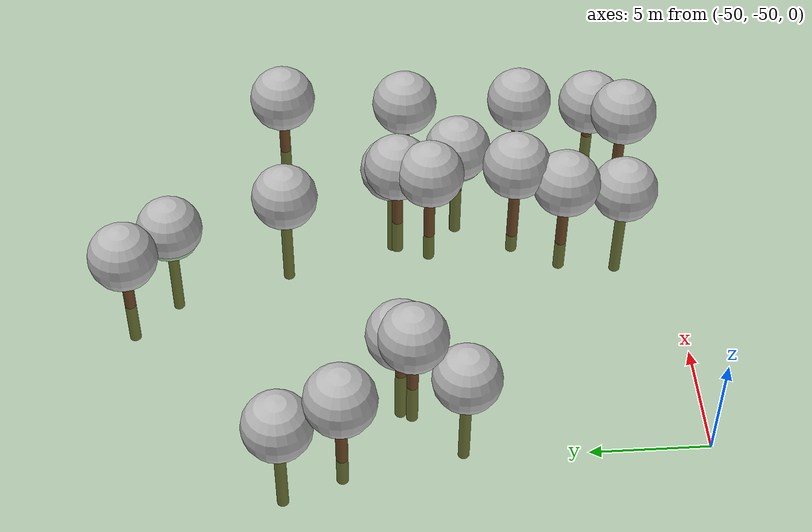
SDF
<sdf version="1.7">
 <world name="default">
  <model name="tree_simple481">
   <static>1</static>
   <link name="link">
    <pose>0 0 0.1 0 -0 0</pose>
    <collision name="collision_trunk">
     <pose>0 0 2 0 -0 0</pose>
     <geometry><cylinder><radius>0.25</radius><length>4</length></cylinder></geometry>
    </collision>
    <collision name="collision_treetop">
     <pose>0 0 5.2 0 -0 0</pose>
     <geometry><sphere><radius>1.5</radius></sphere></geometry>
    </collision>
    <visual name="trunk">
     <pose>0 0 2 0 -0 0</pose>
     <geometry><cylinder><radius>0.25</radius><length>4</length></cylinder></geometry>
     <material>
      <script>
       <uri>model://tree_simple/scripts</uri>
       <uri>model://tree_simple/materials/textures</uri>
       <name>TreeSimple/Trunk</name>
      </script>
     </material>
    </visual>
    <visual name="treetop">
     <pose>0 0 5.2 0 -0 0</pose>
     <geometry><sphere><radius>1.5</radius></sphere></geometry>
     <material>
      <script>
       <uri>model://tree_simple/scripts</uri>
       <uri>model://tree_simple/materials/textures</uri>
       <name>TreeSimple/Treetop</name>
      </script>
     </material>
    </visual>
   </link>
   <pose>-37.2553 -39.474 -1.59025 0 -0 0</pose>
  </model>
  <model name="tree_simple438">
   <static>1</static>
   <link name="link">
    <pose>0 0 0.1 0 -0 0</pose>
    <collision name="collision_trunk">
     <pose>0 0 2 0 -0 0</pose>
     <geometry><cylinder><radius>0.25</radius><length>4</length></cylinder></geometry>
    </collision>
    <collision name="collision_treetop">
     <pose>0 0 5.2 0 -0 0</pose>
     <geometry><sphere><radius>1.5</radius></sphere></geometry>
    </collision>
    <visual name="trunk">
     <pose>0 0 2 0 -0 0</pose>
     <geometry><cylinder><radius>0.25</radius><length>4</length></cylinder></geometry>
     <material>
      <script>
       <uri>model://tree_simple/scripts</uri>
       <uri>model://tree_simple/materials/textures</uri>
       <name>TreeSimple/Trunk</name>
      </script>
     </material>
    </visual>
    <visual name="treetop">
     <pose>0 0 5.2 0 -0 0</pose>
     <geometry><sphere><radius>1.5</radius></sphere></geometry>
     <material>
      <script>
       <uri>model://tree_simple/scripts</uri>
       <uri>model://tree_simple/materials/textures</uri>
       <name>TreeSimple/Treetop</name>
      </script>
     </material>
    </visual>
   </link>
   <pose>-34.2898 -38.004 -4.01416 0 -0 0</pose>
  </model>
  <model name="tree_simple416">
   <static>1</static>
   <link name="link">
    <pose>0 0 0.1 0 -0 0</pose>
    <collision name="collision_trunk">
     <pose>0 0 2 0 -0 0</pose>
     <geometry><cylinder><radius>0.25</radius><length>4</length></cylinder></geometry>
    </collision>
    <collision name="collision_treetop">
     <pose>0 0 5.2 0 -0 0</pose>
     <geometry><sphere><radius>1.5</radius></sphere></geometry>
    </collision>
    <visual name="trunk">
     <pose>0 0 2 0 -0 0</pose>
     <geometry><cylinder><radius>0.25</radius><length>4</length></cylinder></geometry>
     <material>
      <script>
       <uri>model://tree_simple/scripts</uri>
       <uri>model://tree_simple/materials/textures</uri>
       <name>TreeSimple/Trunk</name>
      </script>
     </material>
    </visual>
    <visual name="treetop">
     <pose>0 0 5.2 0 -0 0</pose>
     <geometry><sphere><radius>1.5</radius></sphere></geometry>
     <material>
      <script>
       <uri>model://tree_simple/scripts</uri>
       <uri>model://tree_simple/materials/textures</uri>
       <name>TreeSimple/Treetop</name>
      </script>
     </material>
    </visual>
   </link>
   <pose>-31.2796 -38.7286 -2.65983 0 -0 0</pose>
  </model>
  <model name="tree_simple411">
   <static>1</static>
   <link name="link">
    <pose>0 0 0.1 0 -0 0</pose>
    <collision name="collision_trunk">
     <pose>0 0 2 0 -0 0</pose>
     <geometry><cylinder><radius>0.25</radius><length>4</length></cylinder></geometry>
    </collision>
    <collision name="collision_treetop">
     <pose>0 0 5.2 0 -0 0</pose>
     <geometry><sphere><radius>1.5</radius></sphere></geometry>
    </collision>
    <visual name="trunk">
     <pose>0 0 2 0 -0 0</pose>
     <geometry><cylinder><radius>0.25</radius><length>4</length></cylinder></geometry>
     <material>
      <script>
       <uri>model://tree_simple/scripts</uri>
       <uri>model://tree_simple/materials/textures</uri>
       <name>TreeSimple/Trunk</name>
      </script>
     </material>
    </visual>
    <visual name="treetop">
     <pose>0 0 5.2 0 -0 0</pose>
     <geometry><sphere><radius>1.5</radius></sphere></geometry>
     <material>
      <script>
       <uri>model://tree_simple/scripts</uri>
       <uri>model://tree_simple/materials/textures</uri>
       <name>TreeSimple/Treetop</name>
      </script>
     </material>
    </visual>
   </link>
   <pose>-32.1703 -41.1753 -5.04857 0 -0 0</pose>
  </model>
  <model name="tree_simple407">
   <static>1</static>
   <link name="link">
    <pose>0 0 0.1 0 -0 0</pose>
    <collision name="collision_trunk">
     <pose>0 0 2 0 -0 0</pose>
     <geometry><cylinder><radius>0.25</radius><length>4</length></cylinder></geometry>
    </collision>
    <collision name="collision_treetop">
     <pose>0 0 5.2 0 -0 0</pose>
     <geometry><sphere><radius>1.5</radius></sphere></geometry>
    </collision>
    <visual name="trunk">
     <pose>0 0 2 0 -0 0</pose>
     <geometry><cylinder><radius>0.25</radius><length>4</length></cylinder></geometry>
     <material>
      <script>
       <uri>model://tree_simple/scripts</uri>
       <uri>model://tree_simple/materials/textures</uri>
       <name>TreeSimple/Trunk</name>
      </script>
     </material>
    </visual>
    <visual name="treetop">
     <pose>0 0 5.2 0 -0 0</pose>
     <geometry><sphere><radius>1.5</radius></sphere></geometry>
     <material>
      <script>
       <uri>model://tree_simple/scripts</uri>
       <uri>model://tree_simple/materials/textures</uri>
       <name>TreeSimple/Treetop</name>
      </script>
     </material>
    </visual>
   </link>
   <pose>-31.2269 -33.0617 -2.13789 0 -0 0</pose>
  </model>
  <model name="tree_simple404">
   <static>1</static>
   <link name="link">
    <pose>0 0 0.1 0 -0 0</pose>
    <collision name="collision_trunk">
     <pose>0 0 2 0 -0 0</pose>
     <geometry><cylinder><radius>0.25</radius><length>4</length></cylinder></geometry>
    </collision>
    <collision name="collision_treetop">
     <pose>0 0 5.2 0 -0 0</pose>
     <geometry><sphere><radius>1.5</radius></sphere></geometry>
    </collision>
    <visual name="trunk">
     <pose>0 0 2 0 -0 0</pose>
     <geometry><cylinder><radius>0.25</radius><length>4</length></cylinder></geometry>
     <material>
      <script>
       <uri>model://tree_simple/scripts</uri>
       <uri>model://tree_simple/materials/textures</uri>
       <name>TreeSimple/Trunk</name>
      </script>
     </material>
    </visual>
    <visual name="treetop">
     <pose>0 0 5.2 0 -0 0</pose>
     <geometry><sphere><radius>1.5</radius></sphere></geometry>
     <material>
      <script>
       <uri>model://tree_simple/scripts</uri>
       <uri>model://tree_simple/materials/textures</uri>
       <name>TreeSimple/Treetop</name>
      </script>
     </material>
    </visual>
   </link>
   <pose>-45.4193 -37.6687 -2.80256 0 -0 0</pose>
  </model>
  <model name="tree_simple370">
   <static>1</static>
   <link name="link">
    <pose>0 0 0.1 0 -0 0</pose>
    <collision name="collision_trunk">
     <pose>0 0 2 0 -0 0</pose>
     <geometry><cylinder><radius>0.25</radius><length>4</length></cylinder></geometry>
    </collision>
    <collision name="collision_treetop">
     <pose>0 0 5.2 0 -0 0</pose>
     <geometry><sphere><radius>1.5</radius></sphere></geometry>
    </collision>
    <visual name="trunk">
     <pose>0 0 2 0 -0 0</pose>
     <geometry><cylinder><radius>0.25</radius><length>4</length></cylinder></geometry>
     <material>
      <script>
       <uri>model://tree_simple/scripts</uri>
       <uri>model://tree_simple/materials/textures</uri>
       <name>TreeSimple/Trunk</name>
      </script>
     </material>
    </visual>
    <visual name="treetop">
     <pose>0 0 5.2 0 -0 0</pose>
     <geometry><sphere><radius>1.5</radius></sphere></geometry>
     <material>
      <script>
       <uri>model://tree_simple/scripts</uri>
       <uri>model://tree_simple/materials/textures</uri>
       <name>TreeSimple/Treetop</name>
      </script>
     </material>
    </visual>
   </link>
   <pose>-36.749 -27.7198 -4.81591 0 -0 0</pose>
  </model>
  <model name="tree_simple348">
   <static>1</static>
   <link name="link">
    <pose>0 0 0.1 0 -0 0</pose>
    <collision name="collision_trunk">
     <pose>0 0 2 0 -0 0</pose>
     <geometry><cylinder><radius>0.25</radius><length>4</length></cylinder></geometry>
    </collision>
    <collision name="collision_treetop">
     <pose>0 0 5.2 0 -0 0</pose>
     <geometry><sphere><radius>1.5</radius></sphere></geometry>
    </collision>
    <visual name="trunk">
     <pose>0 0 2 0 -0 0</pose>
     <geometry><cylinder><radius>0.25</radius><length>4</length></cylinder></geometry>
     <material>
      <script>
       <uri>model://tree_simple/scripts</uri>
       <uri>model://tree_simple/materials/textures</uri>
       <name>TreeSimple/Trunk</name>
      </script>
     </material>
    </visual>
    <visual name="treetop">
     <pose>0 0 5.2 0 -0 0</pose>
     <geometry><sphere><radius>1.5</radius></sphere></geometry>
     <material>
      <script>
       <uri>model://tree_simple/scripts</uri>
       <uri>model://tree_simple/materials/textures</uri>
       <name>TreeSimple/Treetop</name>
      </script>
     </material>
    </visual>
   </link>
   <pose>-31.0103 -47.5689 -3.32136 0 -0 0</pose>
  </model>
  <model name="tree_simple312">
   <static>1</static>
   <link name="link">
    <pose>0 0 0.1 0 -0 0</pose>
    <collision name="collision_trunk">
     <pose>0 0 2 0 -0 0</pose>
     <geometry><cylinder><radius>0.25</radius><length>4</length></cylinder></geometry>
    </collision>
    <collision name="collision_treetop">
     <pose>0 0 5.2 0 -0 0</pose>
     <geometry><sphere><radius>1.5</radius></sphere></geometry>
    </collision>
    <visual name="trunk">
     <pose>0 0 2 0 -0 0</pose>
     <geometry><cylinder><radius>0.25</radius><length>4</length></cylinder></geometry>
     <material>
      <script>
       <uri>model://tree_simple/scripts</uri>
       <uri>model://tree_simple/materials/textures</uri>
       <name>TreeSimple/Trunk</name>
      </script>
     </material>
    </visual>
    <visual name="treetop">
     <pose>0 0 5.2 0 -0 0</pose>
     <geometry><sphere><radius>1.5</radius></sphere></geometry>
     <material>
      <script>
       <uri>model://tree_simple/scripts</uri>
       <uri>model://tree_simple/materials/textures</uri>
       <name>TreeSimple/Treetop</name>
      </script>
     </material>
    </visual>
   </link>
   <pose>-49.0128 -32.4705 -3.87171 0 -0 0</pose>
  </model>
  <model name="tree_simple250">
   <static>1</static>
   <link name="link">
    <pose>0 0 0.1 0 -0 0</pose>
    <collision name="collision_trunk">
     <pose>0 0 2 0 -0 0</pose>
     <geometry><cylinder><radius>0.25</radius><length>4</length></cylinder></geometry>
    </collision>
    <collision name="collision_treetop">
     <pose>0 0 5.2 0 -0 0</pose>
     <geometry><sphere><radius>1.5</radius></sphere></geometry>
    </collision>
    <visual name="trunk">
     <pose>0 0 2 0 -0 0</pose>
     <geometry><cylinder><radius>0.25</radius><length>4</length></cylinder></geometry>
     <material>
      <script>
       <uri>model://tree_simple/scripts</uri>
       <uri>model://tree_simple/materials/textures</uri>
       <name>TreeSimple/Trunk</name>
      </script>
     </material>
    </visual>
    <visual name="treetop">
     <pose>0 0 5.2 0 -0 0</pose>
     <geometry><sphere><radius>1.5</radius></sphere></geometry>
     <material>
      <script>
       <uri>model://tree_simple/scripts</uri>
       <uri>model://tree_simple/materials/textures</uri>
       <name>TreeSimple/Treetop</name>
      </script>
     </material>
    </visual>
   </link>
   <pose>-33.603 -48.5976 -1.69182 0 -0 0</pose>
  </model>
  <model name="tree_simple241">
   <static>1</static>
   <link name="link">
    <pose>0 0 0.1 0 -0 0</pose>
    <collision name="collision_trunk">
     <pose>0 0 2 0 -0 0</pose>
     <geometry><cylinder><radius>0.25</radius><length>4</length></cylinder></geometry>
    </collision>
    <collision name="collision_treetop">
     <pose>0 0 5.2 0 -0 0</pose>
     <geometry><sphere><radius>1.5</radius></sphere></geometry>
    </collision>
    <visual name="trunk">
     <pose>0 0 2 0 -0 0</pose>
     <geometry><cylinder><radius>0.25</radius><length>4</length></cylinder></geometry>
     <material>
      <script>
       <uri>model://tree_simple/scripts</uri>
       <uri>model://tree_simple/materials/textures</uri>
       <name>TreeSimple/Trunk</name>
      </script>
     </material>
    </visual>
    <visual name="treetop">
     <pose>0 0 5.2 0 -0 0</pose>
     <geometry><sphere><radius>1.5</radius></sphere></geometry>
     <material>
      <script>
       <uri>model://tree_simple/scripts</uri>
       <uri>model://tree_simple/materials/textures</uri>
       <name>TreeSimple/Treetop</name>
      </script>
     </material>
    </visual>
   </link>
   <pose>-37.4399 -43.2398 -1.10896 0 -0 0</pose>
  </model>
  <model name="tree_simple212">
   <static>1</static>
   <link name="link">
    <pose>0 0 0.1 0 -0 0</pose>
    <collision name="collision_trunk">
     <pose>0 0 2 0 -0 0</pose>
     <geometry><cylinder><radius>0.25</radius><length>4</length></cylinder></geometry>
    </collision>
    <collision name="collision_treetop">
     <pose>0 0 5.2 0 -0 0</pose>
     <geometry><sphere><radius>1.5</radius></sphere></geometry>
    </collision>
    <visual name="trunk">
     <pose>0 0 2 0 -0 0</pose>
     <geometry><cylinder><radius>0.25</radius><length>4</length></cylinder></geometry>
     <material>
      <script>
       <uri>model://tree_simple/scripts</uri>
       <uri>model://tree_simple/materials/textures</uri>
       <name>TreeSimple/Trunk</name>
      </script>
     </material>
    </visual>
    <visual name="treetop">
     <pose>0 0 5.2 0 -0 0</pose>
     <geometry><sphere><radius>1.5</radius></sphere></geometry>
     <material>
      <script>
       <uri>model://tree_simple/scripts</uri>
       <uri>model://tree_simple/materials/textures</uri>
       <name>TreeSimple/Treetop</name>
      </script>
     </material>
    </visual>
   </link>
   <pose>-40.808 -26.1076 -2.27577 0 -0 0</pose>
  </model>
  <model name="tree_simple193">
   <static>1</static>
   <link name="link">
    <pose>0 0 0.1 0 -0 0</pose>
    <collision name="collision_trunk">
     <pose>0 0 2 0 -0 0</pose>
     <geometry><cylinder><radius>0.25</radius><length>4</length></cylinder></geometry>
    </collision>
    <collision name="collision_treetop">
     <pose>0 0 5.2 0 -0 0</pose>
     <geometry><sphere><radius>1.5</radius></sphere></geometry>
    </collision>
    <visual name="trunk">
     <pose>0 0 2 0 -0 0</pose>
     <geometry><cylinder><radius>0.25</radius><length>4</length></cylinder></geometry>
     <material>
      <script>
       <uri>model://tree_simple/scripts</uri>
       <uri>model://tree_simple/materials/textures</uri>
       <name>TreeSimple/Trunk</name>
      </script>
     </material>
    </visual>
    <visual name="treetop">
     <pose>0 0 5.2 0 -0 0</pose>
     <geometry><sphere><radius>1.5</radius></sphere></geometry>
     <material>
      <script>
       <uri>model://tree_simple/scripts</uri>
       <uri>model://tree_simple/materials/textures</uri>
       <name>TreeSimple/Treetop</name>
      </script>
     </material>
    </visual>
   </link>
   <pose>-38.0891 -45.3877 -1.69301 0 -0 0</pose>
  </model>
  <model name="tree_simple176">
   <static>1</static>
   <link name="link">
    <pose>0 0 0.1 0 -0 0</pose>
    <collision name="collision_trunk">
     <pose>0 0 2 0 -0 0</pose>
     <geometry><cylinder><radius>0.25</radius><length>4</length></cylinder></geometry>
    </collision>
    <collision name="collision_treetop">
     <pose>0 0 5.2 0 -0 0</pose>
     <geometry><sphere><radius>1.5</radius></sphere></geometry>
    </collision>
    <visual name="trunk">
     <pose>0 0 2 0 -0 0</pose>
     <geometry><cylinder><radius>0.25</radius><length>4</length></cylinder></geometry>
     <material>
      <script>
       <uri>model://tree_simple/scripts</uri>
       <uri>model://tree_simple/materials/textures</uri>
       <name>TreeSimple/Trunk</name>
      </script>
     </material>
    </visual>
    <visual name="treetop">
     <pose>0 0 5.2 0 -0 0</pose>
     <geometry><sphere><radius>1.5</radius></sphere></geometry>
     <material>
      <script>
       <uri>model://tree_simple/scripts</uri>
       <uri>model://tree_simple/materials/textures</uri>
       <name>TreeSimple/Treetop</name>
      </script>
     </material>
    </visual>
   </link>
   <pose>-34.4243 -40.9559 -2.76825 0 -0 0</pose>
  </model>
  <model name="tree_simple172">
   <static>1</static>
   <link name="link">
    <pose>0 0 0.1 0 -0 0</pose>
    <collision name="collision_trunk">
     <pose>0 0 2 0 -0 0</pose>
     <geometry><cylinder><radius>0.25</radius><length>4</length></cylinder></geometry>
    </collision>
    <collision name="collision_treetop">
     <pose>0 0 5.2 0 -0 0</pose>
     <geometry><sphere><radius>1.5</radius></sphere></geometry>
    </collision>
    <visual name="trunk">
     <pose>0 0 2 0 -0 0</pose>
     <geometry><cylinder><radius>0.25</radius><length>4</length></cylinder></geometry>
     <material>
      <script>
       <uri>model://tree_simple/scripts</uri>
       <uri>model://tree_simple/materials/textures</uri>
       <name>TreeSimple/Trunk</name>
      </script>
     </material>
    </visual>
    <visual name="treetop">
     <pose>0 0 5.2 0 -0 0</pose>
     <geometry><sphere><radius>1.5</radius></sphere></geometry>
     <material>
      <script>
       <uri>model://tree_simple/scripts</uri>
       <uri>model://tree_simple/materials/textures</uri>
       <name>TreeSimple/Treetop</name>
      </script>
     </material>
    </visual>
   </link>
   <pose>-36.3388 -38.0969 -1.96459 0 -0 0</pose>
  </model>
  <model name="tree_simple129">
   <static>1</static>
   <link name="link">
    <pose>0 0 0.1 0 -0 0</pose>
    <collision name="collision_trunk">
     <pose>0 0 2 0 -0 0</pose>
     <geometry><cylinder><radius>0.25</radius><length>4</length></cylinder></geometry>
    </collision>
    <collision name="collision_treetop">
     <pose>0 0 5.2 0 -0 0</pose>
     <geometry><sphere><radius>1.5</radius></sphere></geometry>
    </collision>
    <visual name="trunk">
     <pose>0 0 2 0 -0 0</pose>
     <geometry><cylinder><radius>0.25</radius><length>4</length></cylinder></geometry>
     <material>
      <script>
       <uri>model://tree_simple/scripts</uri>
       <uri>model://tree_simple/materials/textures</uri>
       <name>TreeSimple/Trunk</name>
      </script>
     </material>
    </visual>
    <visual name="treetop">
     <pose>0 0 5.2 0 -0 0</pose>
     <geometry><sphere><radius>1.5</radius></sphere></geometry>
     <material>
      <script>
       <uri>model://tree_simple/scripts</uri>
       <uri>model://tree_simple/materials/textures</uri>
       <name>TreeSimple/Treetop</name>
      </script>
     </material>
    </visual>
   </link>
   <pose>-46.0828 -38.1151 -2.26578 0 -0 0</pose>
  </model>
  <model name="tree_simple83">
   <static>1</static>
   <link name="link">
    <pose>0 0 0.1 0 -0 0</pose>
    <collision name="collision_trunk">
     <pose>0 0 2 0 -0 0</pose>
     <geometry><cylinder><radius>0.25</radius><length>4</length></cylinder></geometry>
    </collision>
    <collision name="collision_treetop">
     <pose>0 0 5.2 0 -0 0</pose>
     <geometry><sphere><radius>1.5</radius></sphere></geometry>
    </collision>
    <visual name="trunk">
     <pose>0 0 2 0 -0 0</pose>
     <geometry><cylinder><radius>0.25</radius><length>4</length></cylinder></geometry>
     <material>
      <script>
       <uri>model://tree_simple/scripts</uri>
       <uri>model://tree_simple/materials/textures</uri>
       <name>TreeSimple/Trunk</name>
      </script>
     </material>
    </visual>
    <visual name="treetop">
     <pose>0 0 5.2 0 -0 0</pose>
     <geometry><sphere><radius>1.5</radius></sphere></geometry>
     <material>
      <script>
       <uri>model://tree_simple/scripts</uri>
       <uri>model://tree_simple/materials/textures</uri>
       <name>TreeSimple/Treetop</name>
      </script>
     </material>
    </visual>
   </link>
   <pose>-49.6713 -35.0161 -1.59198 0 -0 0</pose>
  </model>
  <model name="tree_simple71">
   <static>1</static>
   <link name="link">
    <pose>0 0 0.1 0 -0 0</pose>
    <collision name="collision_trunk">
     <pose>0 0 2 0 -0 0</pose>
     <geometry><cylinder><radius>0.25</radius><length>4</length></cylinder></geometry>
    </collision>
    <collision name="collision_treetop">
     <pose>0 0 5.2 0 -0 0</pose>
     <geometry><sphere><radius>1.5</radius></sphere></geometry>
    </collision>
    <visual name="trunk">
     <pose>0 0 2 0 -0 0</pose>
     <geometry><cylinder><radius>0.25</radius><length>4</length></cylinder></geometry>
     <material>
      <script>
       <uri>model://tree_simple/scripts</uri>
       <uri>model://tree_simple/materials/textures</uri>
       <name>TreeSimple/Trunk</name>
      </script>
     </material>
    </visual>
    <visual name="treetop">
     <pose>0 0 5.2 0 -0 0</pose>
     <geometry><sphere><radius>1.5</radius></sphere></geometry>
     <material>
      <script>
       <uri>model://tree_simple/scripts</uri>
       <uri>model://tree_simple/materials/textures</uri>
       <name>TreeSimple/Treetop</name>
      </script>
     </material>
    </visual>
   </link>
   <pose>-30.8836 -44.1798 -3.08649 0 -0 0</pose>
  </model>
  <model name="tree_simple67">
   <static>1</static>
   <link name="link">
    <pose>0 0 0.1 0 -0 0</pose>
    <collision name="collision_trunk">
     <pose>0 0 2 0 -0 0</pose>
     <geometry><cylinder><radius>0.25</radius><length>4</length></cylinder></geometry>
    </collision>
    <collision name="collision_treetop">
     <pose>0 0 5.2 0 -0 0</pose>
     <geometry><sphere><radius>1.5</radius></sphere></geometry>
    </collision>
    <visual name="trunk">
     <pose>0 0 2 0 -0 0</pose>
     <geometry><cylinder><radius>0.25</radius><length>4</length></cylinder></geometry>
     <material>
      <script>
       <uri>model://tree_simple/scripts</uri>
       <uri>model://tree_simple/materials/textures</uri>
       <name>TreeSimple/Trunk</name>
      </script>
     </material>
    </visual>
    <visual name="treetop">
     <pose>0 0 5.2 0 -0 0</pose>
     <geometry><sphere><radius>1.5</radius></sphere></geometry>
     <material>
      <script>
       <uri>model://tree_simple/scripts</uri>
       <uri>model://tree_simple/materials/textures</uri>
       <name>TreeSimple/Treetop</name>
      </script>
     </material>
    </visual>
   </link>
   <pose>-36.6256 -48.3909 -3.655 0 -0 0</pose>
  </model>
  <model name="tree_simple41">
   <static>1</static>
   <link name="link">
    <pose>0 0 0.1 0 -0 0</pose>
    <collision name="collision_trunk">
     <pose>0 0 2 0 -0 0</pose>
     <geometry><cylinder><radius>0.25</radius><length>4</length></cylinder></geometry>
    </collision>
    <collision name="collision_treetop">
     <pose>0 0 5.2 0 -0 0</pose>
     <geometry><sphere><radius>1.5</radius></sphere></geometry>
    </collision>
    <visual name="trunk">
     <pose>0 0 2 0 -0 0</pose>
     <geometry><cylinder><radius>0.25</radius><length>4</length></cylinder></geometry>
     <material>
      <script>
       <uri>model://tree_simple/scripts</uri>
       <uri>model://tree_simple/materials/textures</uri>
       <name>TreeSimple/Trunk</name>
      </script>
     </material>
    </visual>
    <visual name="treetop">
     <pose>0 0 5.2 0 -0 0</pose>
     <geometry><sphere><radius>1.5</radius></sphere></geometry>
     <material>
      <script>
       <uri>model://tree_simple/scripts</uri>
       <uri>model://tree_simple/materials/textures</uri>
       <name>TreeSimple/Treetop</name>
      </script>
     </material>
    </visual>
   </link>
   <pose>-46.5793 -40.3552 -4.43341 0 -0 0</pose>
  </model>
  <model name="tree_simple15">
   <static>1</static>
   <link name="link">
    <pose>0 0 0.1 0 -0 0</pose>
    <collision name="collision_trunk">
     <pose>0 0 2 0 -0 0</pose>
     <geometry><cylinder><radius>0.25</radius><length>4</length></cylinder></geometry>
    </collision>
    <collision name="collision_treetop">
     <pose>0 0 5.2 0 -0 0</pose>
     <geometry><sphere><radius>1.5</radius></sphere></geometry>
    </collision>
    <visual name="trunk">
     <pose>0 0 2 0 -0 0</pose>
     <geometry><cylinder><radius>0.25</radius><length>4</length></cylinder></geometry>
     <material>
      <script>
       <uri>model://tree_simple/scripts</uri>
       <uri>model://tree_simple/materials/textures</uri>
       <name>TreeSimple/Trunk</name>
      </script>
     </material>
    </visual>
    <visual name="treetop">
     <pose>0 0 5.2 0 -0 0</pose>
     <geometry><sphere><radius>1.5</radius></sphere></geometry>
     <material>
      <script>
       <uri>model://tree_simple/scripts</uri>
       <uri>model://tree_simple/materials/textures</uri>
       <name>TreeSimple/Treetop</name>
      </script>
     </material>
    </visual>
   </link>
   <pose>-36.3233 -32.994 -3.54088 0 -0 0</pose>
  </model>
  <model name="ground_plane">
   <static>1</static>
   <link name="link">
    <collision name="collision">
     <geometry><plane><normal>0 0 1</normal><size>250 250</size></plane></geometry>
     <surface><friction><ode><mu>1</mu><mu2>1</mu2></ode></friction></surface>
    </collision>
    <visual name="grass">
     <cast_shadows>0</cast_shadows>
     <geometry><plane><normal>0 0 1</normal><size>150 250</size></plane></geometry>
     <material>
      <script><uri>file://media/materials/scripts/Gazebo.material</uri><name>Gazebo/Grass</name></script>
     </material>
    </visual>
   </link>
  </model>
 </world>
</sdf>
